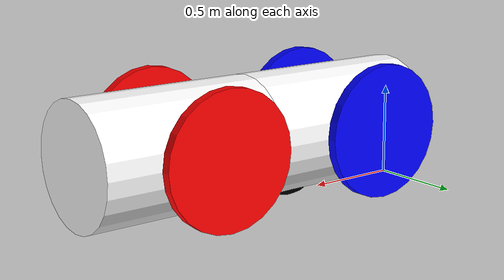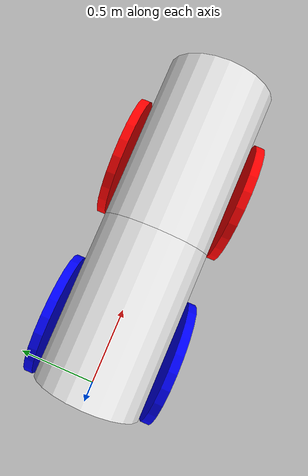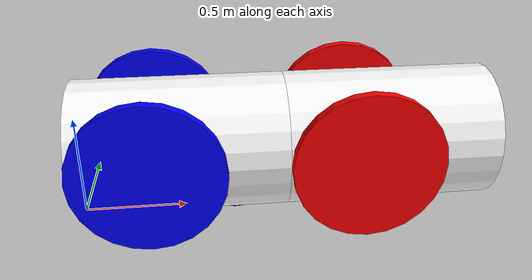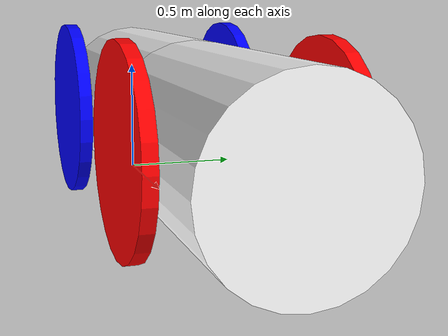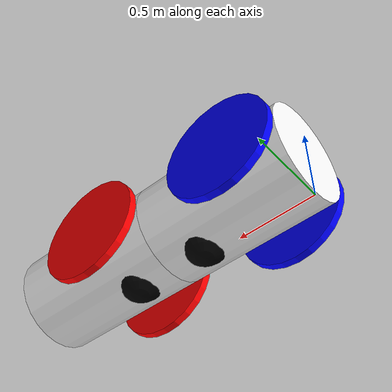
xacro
<?xml version="1.0"?>
<robot xmlns:xacro="http://www.ros.org/wiki/xacro" >

    <!-- INERTIAL SETTINGS -->
    <xacro:include filename="inertial_macros.xacro"/>

    <!-- CAMERA PARAMETERS -->
    <xacro:include filename="rgb_camera.xacro"/>

    <!-- COLORS -->
    <material name="white">
        <color rgba="1 1 1 1" />
    </material>

    <material name="orange">
        <color rgba="1 0.3 0.1 1"/>
    </material>

    <material name="blue">
        <color rgba="0 0 1 1"/>
    </material>

    <material name="black">
        <color rgba="0 0 0 1"/>
    </material>

    <material name="red">
        <color rgba="1 0 0 1"/>
    </material>

    <!-- BASE LINK -->
    <link name="base_link"/>

    <!-- DEFINE PARAMETERS -->
    <xacro:property name="chassis_radius" value="0.0065"/>
    <xacro:property name="chassis_length" value="0.02"/>
    <xacro:property name="wheel_radius" value="0.008"/>
    <xacro:property name="wheel_length" value="0.001"/>
    <xacro:property name="chassis_mass" value="0.002"/>
    <xacro:property name="wheel_mass" value="0.001"/>
    <xacro:property name="caster_wheel_mass" value="0.001"/>

    <!-- Update All Parameters from a Single Parameter -->
    <xacro:property name="scale" value="50.0"/>
    <xacro:property name="scaled_chassis_radius" value="${chassis_radius * scale}"/>
    <xacro:property name="scaled_chassis_length" value="${chassis_length * scale}"/>
    <xacro:property name="scaled_wheel_radius" value="${scaled_chassis_radius * 1.1}"/>
    <xacro:property name="scaled_wheel_length" value="${wheel_length * scale}"/>
    <xacro:property name="scaled_chassis_mass" value="${chassis_mass * scale}"/>
    <xacro:property name="scaled_wheel_mass" value="${wheel_mass * scale}"/>
    <xacro:property name="scaled_caster_wheel_mass" value="${caster_wheel_mass * scale}"/>
    <xacro:property name="scaled_camera_length" value="${scaled_chassis_radius / 5}"/>

    <!-- BACK CHASSIS LINK -->
    <joint name="back_chassis_joint" type="fixed">
        <parent link="base_link"/>
        <child link="back_chassis"/>
        <origin xyz="${scaled_chassis_length / 2} 0 ${scaled_wheel_radius}" rpy="0 0 0"/>
    </joint>

    <link name="back_chassis">
        <visual>
            <origin xyz="0 0 0" rpy="0 ${pi/2} 0"/>
            <geometry>
                <cylinder radius="${scaled_chassis_radius}" length="${scaled_chassis_length}"/>
            </geometry>
            <material name="white"/>
        </visual>
        <collision>
            <origin xyz="0 0 0" rpy="0 ${pi/2} 0"/>
            <geometry>
                <cylinder radius="${scaled_chassis_radius}" length="${scaled_chassis_length * 0.8}"/>
            </geometry>
        </collision>
        <xacro:inertial_cylinder mass="${scaled_chassis_mass}" radius="${scaled_chassis_radius}" length="${scaled_chassis_length}">
            <origin xyz="0 0 0" rpy="0 ${pi/2} 0"/>
        </xacro:inertial_cylinder>
    </link>

    <gazebo reference="back_chassis">
        <material>Gazebo/White</material>
    </gazebo>

    <!-- LEFT BACK WHEEL LINK -->
    <joint name="lb_wheel_joint" type="continuous">
        <parent link="base_link"/>
        <child link="lb_wheel"/>
        <origin xyz="${scaled_wheel_radius} ${scaled_chassis_radius} ${scaled_wheel_radius}" rpy="-${pi/2} 0 0" />
        <axis xyz="0 0 1"/>
    </joint>

    <link name="lb_wheel">
        <visual>
            <origin xyz="0 0 ${scaled_wheel_length / 2}" rpy="0 0 0"/>
            <geometry>
                <cylinder radius="${scaled_wheel_radius}" length="${scaled_wheel_length}"/>
            </geometry>
            <material name="blue"/>
        </visual>
        <collision>
            <origin xyz="0 0 ${scaled_wheel_length / 2}" rpy="0 0 0"/>
            <geometry>
                <cylinder radius="${scaled_wheel_radius}" length="${scaled_wheel_length}"/>
            </geometry>
        </collision>
        <xacro:inertial_cylinder mass="${scaled_wheel_mass}" radius="${scaled_wheel_radius}" length="${scaled_wheel_length}">
            <origin xyz="0 0 ${scaled_wheel_length / 2}" rpy="0 0 0"/>
        </xacro:inertial_cylinder>
    </link>

    <gazebo reference="lb_wheel">
        <material>Gazebo/Blue</material>
    </gazebo>

    <!-- RIGHT BACK WHEEL LINK -->
    <joint name="rb_wheel_joint" type="continuous">
        <parent link="base_link"/>
        <child link="rb_wheel"/>
        <origin xyz="${scaled_wheel_radius} -${scaled_chassis_radius} ${scaled_wheel_radius}" rpy="${pi/2} 0 0" />
        <axis xyz="0 0 -1"/>
    </joint>

    <link name="rb_wheel">
        <visual>
            <origin xyz="0 0 ${scaled_wheel_length / 2}" rpy="0 0 0"/>
            <geometry>
                <cylinder radius="${scaled_wheel_radius}" length="${scaled_wheel_length}"/>
            </geometry>
            <material name="blue"/>
        </visual>
        <collision>
            <origin xyz="0 0 ${scaled_wheel_length / 2}" rpy="0 0 0"/>
            <geometry>
                <cylinder radius="${scaled_wheel_radius}" length="${scaled_wheel_length}"/>
            </geometry>
        </collision>
        <xacro:inertial_cylinder mass="${scaled_wheel_mass}" radius="${scaled_wheel_radius}" length="${scaled_wheel_length}">
            <origin xyz="0 0 ${scaled_wheel_length / 2}" rpy="0 0 0"/>
        </xacro:inertial_cylinder>
    </link>

    <gazebo reference="rb_wheel">
        <material>Gazebo/Blue</material>
    </gazebo>

    <!-- BACK CASTER WHEEL LINK -->
    <joint name="b_caster_wheel_joint" type="fixed">
        <parent link="back_chassis"/>
        <child link="b_caster_wheel"/>
        <origin xyz="${scaled_chassis_length / 4} 0 -${scaled_wheel_radius / 2}" rpy="0 0 0"/>
    </joint>

    <link name="b_caster_wheel">
        <visual>
            <geometry>
                <sphere radius="${scaled_wheel_radius / 2}"/>
            </geometry>
            <material name="black"/>
        </visual>
        <collision>
            <geometry>
                <sphere radius="${scaled_wheel_radius / 2}"/>
            </geometry>
        </collision>
        <xacro:inertial_sphere mass="${scaled_caster_wheel_mass}" radius="${scaled_wheel_radius / 2}">
            <origin xyz="0 0 0" rpy="0 0 0"/>
        </xacro:inertial_sphere>
    </link>

    <gazebo reference="b_caster_wheel">
        <material>Gazebo/Black</material>
        <mu1 value="0.001"/>
        <mu2 value="0.001"/>
    </gazebo>

    <!-- FRONT CHASSIS LINK -->
    <joint name="roll_joint" type="revolute">
        <parent link="back_chassis"/>
        <child link="roll_link"/>
        <origin xyz="${scaled_chassis_length / 2} 0 0" rpy="0 0 0"/>
        <axis xyz="1 0 0"/>
        <limit velocity="10.0" effort="200" lower="-${pi}" upper="${pi}"/>
    </joint>

    <!-- Roll Joint -->
    <link name="roll_link"/>

    <!-- Pitch Joint -->
    <joint name="pitch_joint" type="revolute">
        <parent link="roll_link"/>
        <child link="pitch_link"/>
        <origin xyz="0 0 0" rpy="0 0 0"/>
        <axis xyz="0 1 0"/>
        <limit velocity="10.0" effort="200" lower="-${pi}" upper="${pi}"/>
    </joint>

    <link name="pitch_link"/>

    <!-- Yaw Joint -->
    <joint name="yaw_joint" type="revolute">
        <parent link="pitch_link"/>
        <child link="front_chassis"/>
        <origin xyz="0 0 0" rpy="0 0 0"/>
        <axis xyz="0 0 1"/>
        <limit velocity="10.0" effort="200" lower="-${pi}" upper="${pi}"/>
    </joint>

    <link name="front_chassis">
        <visual>
            <origin xyz="${scaled_chassis_length / 2} 0 0" rpy="0 ${pi/2} 0"/>
            <geometry>
                <cylinder radius="${scaled_chassis_radius}" length="${scaled_chassis_length}"/>
            </geometry>
            <material name="white"/>
        </visual>
        <collision>
            <origin xyz="${scaled_chassis_length / 2} 0 0" rpy="0 ${pi/2} 0"/>
            <geometry>
                <cylinder radius="${scaled_chassis_radius}" length="${scaled_chassis_length * 0.8}"/>
            </geometry>
        </collision>
        <xacro:inertial_cylinder mass="${scaled_chassis_mass}" radius="${scaled_chassis_radius}" length="${scaled_chassis_length}">
            <origin xyz="${scaled_chassis_length / 2} 0 0" rpy="0 ${pi/2} 0"/>
        </xacro:inertial_cylinder>
    </link>

    <gazebo reference="front_chassis">
        <material>Gazebo/White</material>
    </gazebo>

    <!-- LEFT FRONT WHEEL LINK -->
    <joint name="lf_wheel_joint" type="continuous">
        <parent link="front_chassis"/>
        <child link="lf_wheel"/>
        <origin xyz="${scaled_wheel_radius} ${scaled_chassis_radius} 0" rpy="-${pi/2} 0 0"/>
        <axis xyz="0 0 1"/>
    </joint>

    <link name="lf_wheel">
        <visual>
            <origin xyz="0 0 ${scaled_wheel_length / 2}" rpy="0 0 0"/>
            <geometry>
                <cylinder radius="${scaled_wheel_radius}" length="${scaled_wheel_length}"/>
            </geometry>
            <material name="red"/>
        </visual>
        <collision>
            <origin xyz="0 0 ${scaled_wheel_length / 2}" rpy="0 0 0"/>
            <geometry>
                <cylinder radius="${scaled_wheel_radius}" length="${scaled_wheel_length}"/>
            </geometry>
        </collision>
        <xacro:inertial_cylinder mass="${scaled_wheel_mass}" radius="${scaled_wheel_radius}" length="${scaled_wheel_length}">
            <origin xyz="0 0 ${scaled_wheel_length / 2}" rpy="0 0 0"/>
        </xacro:inertial_cylinder>
    </link>

    <gazebo reference="lf_wheel">
        <material>Gazebo/Red</material>
    </gazebo>

    <!-- RIGHT FRONT WHEEL LINK -->
    <joint name="rf_wheel_joint" type="continuous">
        <parent link="front_chassis"/>
        <child link="rf_wheel"/>
        <origin xyz="${scaled_wheel_radius} -${scaled_chassis_radius} 0" rpy="${pi/2} 0 0"/>
        <axis xyz="0 0 -1"/>
    </joint>

    <link name="rf_wheel">
        <visual>
            <origin xyz="0 0 ${scaled_wheel_length / 2}" rpy="0 0 0"/>
            <geometry>
                <cylinder radius="${scaled_wheel_radius}" length="${scaled_wheel_length}"/>
            </geometry>
            <material name="red"/>
        </visual>
        <collision>
            <origin xyz="0 0 ${scaled_wheel_length / 2}" rpy="0 0 0"/>
            <geometry>
                <cylinder radius="${scaled_wheel_radius}" length="${scaled_wheel_length}"/>
            </geometry>
        </collision>
        <xacro:inertial_cylinder mass="${scaled_wheel_mass}" radius="${scaled_wheel_radius}" length="${scaled_wheel_length}">
            <origin xyz="0 0 ${scaled_wheel_length / 2}" rpy="0 0 0"/>
        </xacro:inertial_cylinder>
    </link>

    <gazebo reference="rf_wheel">
        <material>Gazebo/Red</material>
    </gazebo>

    <!-- FRONT CASTER WHEEL LINK -->
    <joint name="f_caster_wheel_joint" type="fixed">
        <parent link="front_chassis"/>
        <child link="f_caster_wheel"/>
        <origin xyz="${scaled_chassis_length / 4} 0 -${scaled_wheel_radius / 2}" rpy="0 0 0"/>
    </joint>

    <link name="f_caster_wheel">
        <visual>
            <geometry>
                <sphere radius="${scaled_wheel_radius / 2}"/>
            </geometry>
            <material name="black"/>
        </visual>
        <collision>
            <geometry>
                <sphere radius="${scaled_wheel_radius / 2}"/>
            </geometry>
        </collision>
        <xacro:inertial_sphere mass="${scaled_caster_wheel_mass}" radius="${scaled_wheel_radius / 2}">
            <origin xyz="0 0 0" rpy="0 0 0"/>
        </xacro:inertial_sphere>
    </link>

    <gazebo reference="f_caster_wheel">
        <material>Gazebo/Black</material>
        <mu1 value="0.001"/>
        <mu2 value="0.001"/>
    </gazebo>

    <!-- CAMERA -->
    <joint name="camera_joint" type="fixed">
        <parent link="front_chassis"/>
        <child link="camera_link"/>
        <origin xyz="${scaled_chassis_length / 2} 0 0" rpy="0 0 0"/>
    </joint>

    <link name="camera_link">
        <visual>
            <origin xyz="${scaled_camera_length / 2} 0 0" rpy="0 0 0"/>
            <geometry>
                <box size="${scaled_camera_length} ${scaled_camera_length} ${scaled_camera_length}"/>
            </geometry>
            <material name="red"/>
        </visual>
        <collision>
            <origin xyz="${scaled_camera_length / 2} 0 0" rpy="0 0 0"/>
            <geometry>
                <box size="${scaled_camera_length} ${scaled_camera_length} ${scaled_camera_length}"/>
            </geometry>
        </collision>
    </link>

    <joint name="camera_optical_joint" type="fixed">
        <parent link="camera_link"/>
        <child link="camera_optical_link"/>
        <origin xyz="0 0 0" rpy="${-pi/2} 0 ${-pi/2}"/>
    </joint>

    <link name="camera_optical_link"/>

</robot>

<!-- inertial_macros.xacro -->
<robot xmlns:xacro="http://www.ros.org/wiki/xacro" name="colonoscopy">

    <!-- Specify some standard inertial calculations https://en.wikipedia.org/wiki/List_of_moments_of_inertia -->
    <!-- These make use of xacro's mathematical functionality -->

    <xacro:macro name="inertial_sphere" params="mass radius *origin">
        <inertial>
            <xacro:insert_block name="origin"/>
            <mass value="${mass}" />
            <inertia ixx="${(2/5) * mass * (radius*radius)}" ixy="0.0" ixz="0.0"
                    iyy="${(2/5) * mass * (radius*radius)}" iyz="0.0"
                    izz="${(2/5) * mass * (radius*radius)}" />
        </inertial>
    </xacro:macro>

    <xacro:macro name="inertial_box" params="mass x y z *origin">
        <inertial>
            <xacro:insert_block name="origin"/>
            <mass value="${mass}" />
            <inertia ixx="${(1/12) * mass * (y*y+z*z)}" ixy="0.0" ixz="0.0"
                    iyy="${(1/12) * mass * (x*x+z*z)}" iyz="0.0"
                    izz="${(1/12) * mass * (x*x+y*y)}" />
        </inertial>
    </xacro:macro>

    <xacro:macro name="inertial_cylinder" params="mass length radius *origin">
        <inertial>
            <xacro:insert_block name="origin"/>
            <mass value="${mass}" />
            <inertia ixx="${(1/12) * mass * (3*radius*radius + length*length)}" ixy="0.0" ixz="0.0"
                    iyy="${(1/12) * mass * (3*radius*radius + length*length)}" iyz="0.0"
                    izz="${(1/2) * mass * (radius*radius)}" />
        </inertial>
    </xacro:macro>

</robot>
